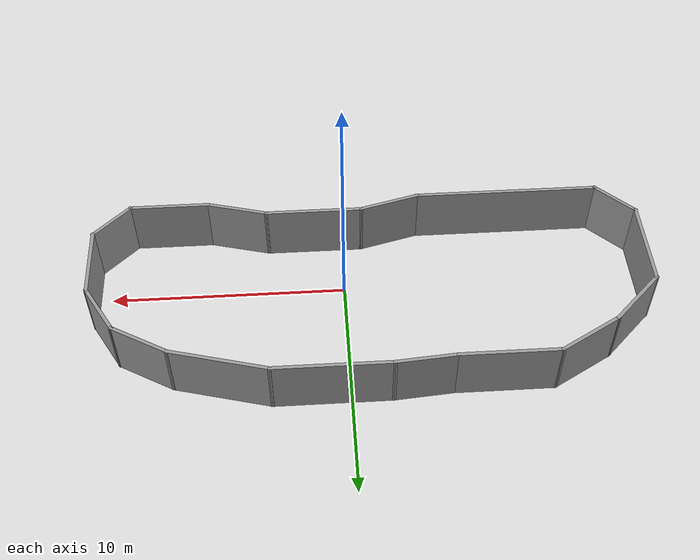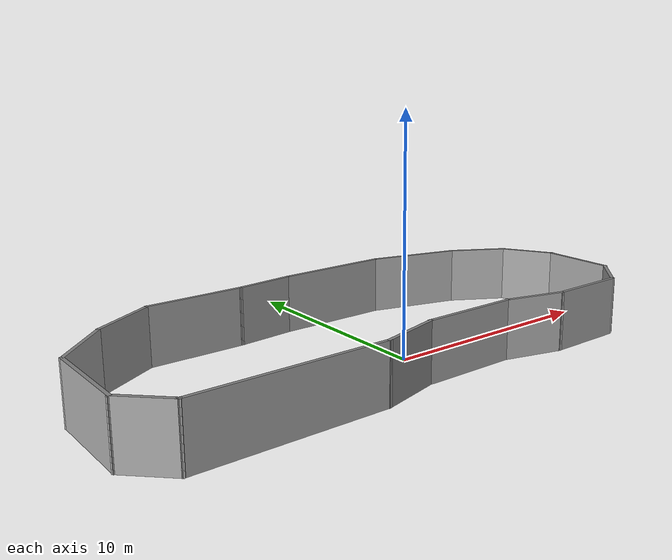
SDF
<?xml version='1.0'?>
<sdf version='1.6'>
  <model name='wall2'>
    <pose frame=''>-1.07681 1.33302 0 0 -0 0</pose>
    <link name='Wall_10'>
      <collision name='Wall_10_Collision'>
        <geometry>
          <box>
            <size>4.25 0.15 2.5</size>
          </box>
        </geometry>
        <pose frame=''>0 0 1.25 0 -0 0</pose>
      </collision>
      <visual name='Wall_10_Visual'>
        <pose frame=''>0 0 1.25 0 -0 0</pose>
        <geometry>
          <box>
            <size>4.25 0.15 2.5</size>
          </box>
        </geometry>
        <material>
          <script>
            <uri>file://media/materials/scripts/gazebo.material</uri>
            <name>Gazebo/Grey</name>
          </script>
          <ambient>1 1 1 1</ambient>
        </material>
      </visual>
      <pose frame=''>2.25 -3.81059 0 0 -0 3.14159</pose>
    </link>
    <link name='Wall_11'>
      <collision name='Wall_11_Collision'>
        <geometry>
          <box>
            <size>2.75 0.15 2.5</size>
          </box>
        </geometry>
        <pose frame=''>0 0 1.25 0 -0 0</pose>
      </collision>
      <visual name='Wall_11_Visual'>
        <pose frame=''>0 0 1.25 0 -0 0</pose>
        <geometry>
          <box>
            <size>2.75 0.15 2.5</size>
          </box>
        </geometry>
        <material>
          <script>
            <uri>file://media/materials/scripts/gazebo.material</uri>
            <name>Gazebo/Grey</name>
          </script>
          <ambient>1 1 1 1</ambient>
        </material>
      </visual>
      <pose frame=''>-1.0557 -4.14705 0 0 0 -2.87979</pose>
    </link>
    <link name='Wall_12'>
      <collision name='Wall_12_Collision'>
        <geometry>
          <box>
            <size>8 0.15 2.5</size>
          </box>
        </geometry>
        <pose frame=''>0 0 1.25 0 -0 0</pose>
      </collision>
      <visual name='Wall_12_Visual'>
        <pose frame=''>0 0 1.25 0 -0 0</pose>
        <geometry>
          <box>
            <size>8 0.15 2.5</size>
          </box>
        </geometry>
        <material>
          <script>
            <uri>file://media/materials/scripts/gazebo.material</uri>
            <name>Gazebo/Grey</name>
          </script>
          <ambient>1 1 1 1</ambient>
        </material>
      </visual>
      <pose frame=''>-6.23641 -4.48352 0 0 -0 3.14159</pose>
    </link>
    <link name='Wall_13'>
      <collision name='Wall_13_Collision'>
        <geometry>
          <box>
            <size>2.25 0.15 2.5</size>
          </box>
        </geometry>
        <pose frame=''>0 0 1.25 0 -0 0</pose>
      </collision>
      <visual name='Wall_13_Visual'>
        <pose frame=''>0 0 1.25 0 -0 0</pose>
        <geometry>
          <box>
            <size>2.25 0.15 2.5</size>
          </box>
        </geometry>
        <material>
          <script>
            <uri>file://media/materials/scripts/gazebo.material</uri>
            <name>Gazebo/Grey</name>
          </script>
          <ambient>1 1 1 1</ambient>
        </material>
      </visual>
      <pose frame=''>-10.9039 -3.74105 0 0 -0 2.35619</pose>
    </link>
    <link name='Wall_14'>
      <collision name='Wall_14_Collision'>
        <geometry>
          <box>
            <size>4 0.15 2.5</size>
          </box>
        </geometry>
        <pose frame=''>0 0 1.25 0 -0 0</pose>
      </collision>
      <visual name='Wall_14_Visual'>
        <pose frame=''>0 0 1.25 0 -0 0</pose>
        <geometry>
          <box>
            <size>4 0.15 2.5</size>
          </box>
        </geometry>
        <material>
          <script>
            <uri>file://media/materials/scripts/gazebo.material</uri>
            <name>Gazebo/Grey</name>
          </script>
          <ambient>1 1 1 1</ambient>
        </material>
      </visual>
      <pose frame=''>-11.6463 -1.07359 0 0 -0 1.5708</pose>
    </link>
    <link name='Wall_15'>
      <collision name='Wall_15_Collision'>
        <geometry>
          <box>
            <size>3 0.15 2.5</size>
          </box>
        </geometry>
        <pose frame=''>0 0 1.25 0 -0 0</pose>
      </collision>
      <visual name='Wall_15_Visual'>
        <pose frame=''>0 0 1.25 0 -0 0</pose>
        <geometry>
          <box>
            <size>3 0.15 2.5</size>
          </box>
        </geometry>
        <material>
          <script>
            <uri>file://media/materials/scripts/gazebo.material</uri>
            <name>Gazebo/Grey</name>
          </script>
          <ambient>1 1 1 1</ambient>
        </material>
      </visual>
      <pose frame=''>-10.6387 1.85903 0 0 -0 0.785398</pose>
    </link>
    <link name='Wall_16'>
      <collision name='Wall_16_Collision'>
        <geometry>
          <box>
            <size>3 0.15 2.5</size>
          </box>
        </geometry>
        <pose frame=''>0 0 1.25 0 -0 0</pose>
      </collision>
      <visual name='Wall_16_Visual'>
        <pose frame=''>0 0 1.25 0 -0 0</pose>
        <geometry>
          <box>
            <size>3 0.15 2.5</size>
          </box>
        </geometry>
        <material>
          <script>
            <uri>file://media/materials/scripts/gazebo.material</uri>
            <name>Gazebo/Grey</name>
          </script>
          <ambient>1 1 1 1</ambient>
        </material>
      </visual>
      <pose frame=''>-8.39699 3.57916 0 0 -0 0.523599</pose>
    </link>
    <link name='Wall_17'>
      <collision name='Wall_17_Collision'>
        <geometry>
          <box>
            <size>4.25 0.15 2.5</size>
          </box>
        </geometry>
        <pose frame=''>0 0 1.25 0 -0 0</pose>
      </collision>
      <visual name='Wall_17_Visual'>
        <pose frame=''>0 0 1.25 0 -0 0</pose>
        <geometry>
          <box>
            <size>4.25 0.15 2.5</size>
          </box>
        </geometry>
        <material>
          <script>
            <uri>file://media/materials/scripts/gazebo.material</uri>
            <name>Gazebo/Grey</name>
          </script>
          <ambient>1 1 1 1</ambient>
        </material>
      </visual>
      <pose frame=''>-5.1129 4.29166 0 0 -0 0</pose>
    </link>
    <link name='Wall_18'>
      <collision name='Wall_18_Collision'>
        <geometry>
          <box>
            <size>2.63085 0.15 2.5</size>
          </box>
        </geometry>
        <pose frame=''>0 0 1.25 0 -0 0</pose>
      </collision>
      <visual name='Wall_18_Visual'>
        <pose frame=''>0 0 1.25 0 -0 0</pose>
        <geometry>
          <box>
            <size>2.63085 0.15 2.5</size>
          </box>
        </geometry>
        <material>
          <script>
            <uri>file://media/materials/scripts/gazebo.material</uri>
            <name>Gazebo/Grey</name>
          </script>
          <ambient>1 1 1 1</ambient>
        </material>
      </visual>
      <pose frame=''>-1.82677 4.39469 0 0 -0 0.083158</pose>
    </link>
    <link name='Wall_2'>
      <collision name='Wall_2_Collision'>
        <geometry>
          <box>
            <size>5 0.15 2.5</size>
          </box>
        </geometry>
        <pose frame=''>0 0 1.25 0 -0 0</pose>
      </collision>
      <visual name='Wall_2_Visual'>
        <pose frame=''>0 0 1.25 0 -0 0</pose>
        <geometry>
          <box>
            <size>5 0.15 2.5</size>
          </box>
        </geometry>
        <material>
          <script>
            <uri>file://media/materials/scripts/gazebo.material</uri>
            <name>Gazebo/Grey</name>
          </script>
          <ambient>1 1 1 1</ambient>
        </material>
      </visual>
      <pose frame=''>1.83437 4.49773 0 0 -0 0</pose>
    </link>
    <link name='Wall_3'>
      <collision name='Wall_3_Collision'>
        <geometry>
          <box>
            <size>4.25 0.15 2.5</size>
          </box>
        </geometry>
        <pose frame=''>0 0 1.25 0 -0 0</pose>
      </collision>
      <visual name='Wall_3_Visual'>
        <pose frame=''>0 0 1.25 0 -0 0</pose>
        <geometry>
          <box>
            <size>4.25 0.15 2.5</size>
          </box>
        </geometry>
        <material>
          <script>
            <uri>file://media/materials/scripts/gazebo.material</uri>
            <name>Gazebo/Grey</name>
          </script>
          <ambient>1 1 1 1</ambient>
        </material>
      </visual>
      <pose frame=''>6.23952 3.96715 0 0 0 -0.261799</pose>
    </link>
    <link name='Wall_4'>
      <collision name='Wall_4_Collision'>
        <geometry>
          <box>
            <size>2.75 0.15 2.5</size>
          </box>
        </geometry>
        <pose frame=''>0 0 1.25 0 -0 0</pose>
      </collision>
      <visual name='Wall_4_Visual'>
        <pose frame=''>0 0 1.25 0 -0 0</pose>
        <geometry>
          <box>
            <size>2.75 0.15 2.5</size>
          </box>
        </geometry>
        <material>
          <script>
            <uri>file://media/materials/scripts/gazebo.material</uri>
            <name>Gazebo/Grey</name>
          </script>
          <ambient>1 1 1 1</ambient>
        </material>
      </visual>
      <pose frame=''>9.3455 2.78657 0 0 0 -0.523599</pose>
    </link>
    <link name='Wall_5'>
      <collision name='Wall_5_Collision'>
        <geometry>
          <box>
            <size>2.5 0.15 2.5</size>
          </box>
        </geometry>
        <pose frame=''>0 0 1.25 0 -0 0</pose>
      </collision>
      <visual name='Wall_5_Visual'>
        <pose frame=''>0 0 1.25 0 -0 0</pose>
        <geometry>
          <box>
            <size>2.5 0.15 2.5</size>
          </box>
        </geometry>
        <material>
          <script>
            <uri>file://media/materials/scripts/gazebo.material</uri>
            <name>Gazebo/Grey</name>
          </script>
          <ambient>1 1 1 1</ambient>
        </material>
      </visual>
      <pose frame=''>11.0588 1.11899 0 0 0 -1.0472</pose>
    </link>
    <link name='Wall_6'>
      <collision name='Wall_6_Collision'>
        <geometry>
          <box>
            <size>3.25 0.15 2.5</size>
          </box>
        </geometry>
        <pose frame=''>0 0 1.25 0 -0 0</pose>
      </collision>
      <visual name='Wall_6_Visual'>
        <pose frame=''>0 0 1.25 0 -0 0</pose>
        <geometry>
          <box>
            <size>3.25 0.15 2.5</size>
          </box>
        </geometry>
        <material>
          <script>
            <uri>file://media/materials/scripts/gazebo.material</uri>
            <name>Gazebo/Grey</name>
          </script>
          <ambient>1 1 1 1</ambient>
        </material>
      </visual>
      <pose frame=''>11.6463 -1.44859 0 0 0 -1.5708</pose>
    </link>
    <link name='Wall_7'>
      <collision name='Wall_7_Collision'>
        <geometry>
          <box>
            <size>2.25 0.15 2.5</size>
          </box>
        </geometry>
        <pose frame=''>0 0 1.25 0 -0 0</pose>
      </collision>
      <visual name='Wall_7_Visual'>
        <pose frame=''>0 0 1.25 0 -0 0</pose>
        <geometry>
          <box>
            <size>2.25 0.15 2.5</size>
          </box>
        </geometry>
        <material>
          <script>
            <uri>file://media/materials/scripts/gazebo.material</uri>
            <name>Gazebo/Grey</name>
          </script>
          <ambient>1 1 1 1</ambient>
        </material>
      </visual>
      <pose frame=''>10.9039 -3.74105 0 0 0 -2.35619</pose>
    </link>
    <link name='Wall_8'>
      <collision name='Wall_8_Collision'>
        <geometry>
          <box>
            <size>3.5 0.15 2.5</size>
          </box>
        </geometry>
        <pose frame=''>0 0 1.25 0 -0 0</pose>
      </collision>
      <visual name='Wall_8_Visual'>
        <pose frame=''>0 0 1.25 0 -0 0</pose>
        <geometry>
          <box>
            <size>3.5 0.15 2.5</size>
          </box>
        </geometry>
        <material>
          <script>
            <uri>file://media/materials/scripts/gazebo.material</uri>
            <name>Gazebo/Grey</name>
          </script>
          <ambient>1 1 1 1</ambient>
        </material>
      </visual>
      <pose frame=''>8.48641 -4.48352 0 0 -0 3.14159</pose>
    </link>
    <link name='Wall_9'>
      <collision name='Wall_9_Collision'>
        <geometry>
          <box>
            <size>2.75 0.15 2.5</size>
          </box>
        </geometry>
        <pose frame=''>0 0 1.25 0 -0 0</pose>
      </collision>
      <visual name='Wall_9_Visual'>
        <pose frame=''>0 0 1.25 0 -0 0</pose>
        <geometry>
          <box>
            <size>2.75 0.15 2.5</size>
          </box>
        </geometry>
        <material>
          <script>
            <uri>file://media/materials/scripts/gazebo.material</uri>
            <name>Gazebo/Grey</name>
          </script>
          <ambient>1 1 1 1</ambient>
        </material>
      </visual>
      <pose frame=''>5.5557 -4.14705 0 0 -0 2.87979</pose>
    </link>
    <static>1</static>
  </model>
</sdf>
